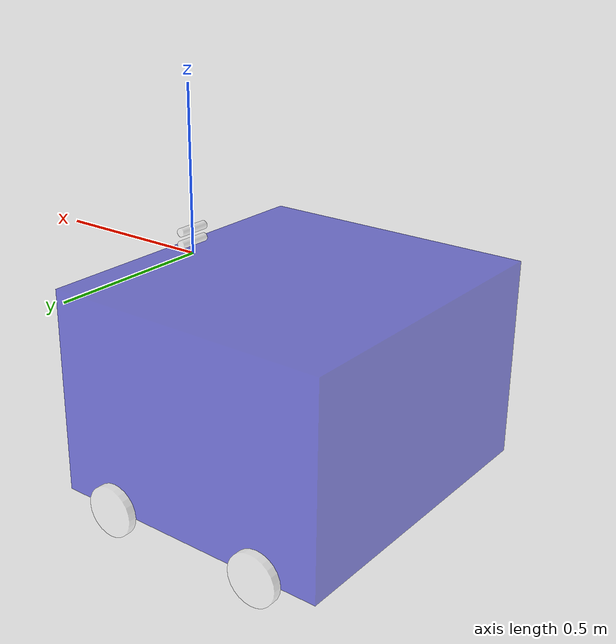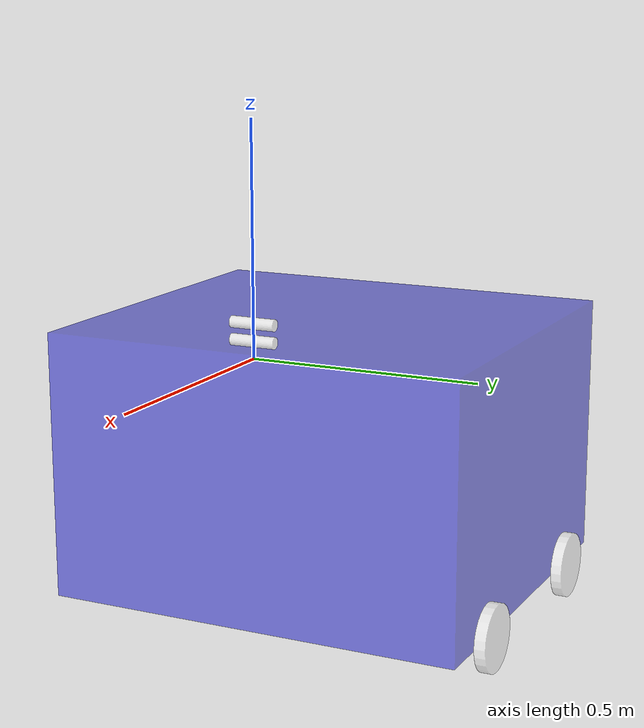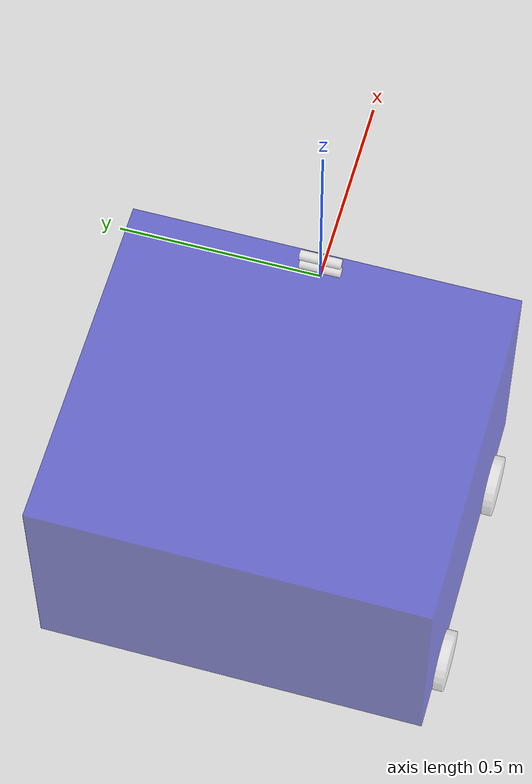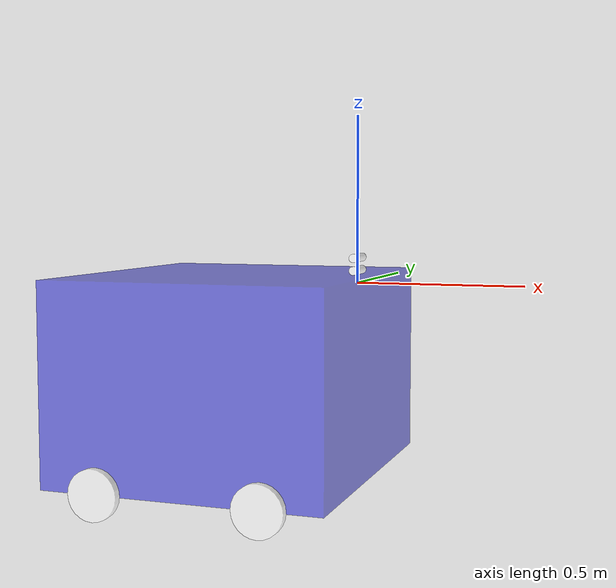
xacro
<?xml version="1.0"?>
<robot xmlns:xacro="http://www.ros.org/wiki/xacro" name="robot">

  <material name="blue">
    <color rgba="0 0 0.8 .5"/>
  </material>
  <material name="black">
    <color rgba="0 0 0 0.5"/>
  </material>
  <material name="white">
    <color rgba="1 1 1 .5"/>
  </material>
  <material name="green">
    <color rgba="0 1 0 0.5"/>
  </material>

  <xacro:property name="baseLength" value="0.8636" />
  <xacro:property name="baseWidth" value="0.9652" />
  <xacro:property name="baseHeight" value="0.6096" />

  <xacro:property name="baseMass" value="27" />
  <xacro:property name="wheelMass" value="0.453592" />

  <xacro:property name="wheelWidth" value="0.0254" />
  <xacro:property name="wheelRadius" value="0.0762" />

  <xacro:property name="wheelOffset" value="0.25" />

  <xacro:property name="camMass" value="0.05" />
  <xacro:property name="camWidth" value="0.1016" />
  <xacro:property name="camRadius" value="0.0127" />

  <link name="base_link">
    <visual>
      <geometry>
        <box size="${baseLength} ${baseWidth} ${baseHeight}"/>
      </geometry>
      <material name="blue"/>
      <origin rpy="0 0 0" xyz="0 0 0.3"/>
    </visual>
    <collision>
      <geometry>
        <box size="${baseLength} ${baseWidth} ${baseHeight}"/>
      </geometry>
      <origin rpy="0 0 0" xyz="0 0 0.3"/>
    </collision>
    <inertial>
      <mass value="${baseMass}"/>
      <inertia ixx="${(1/12) * baseMass * ((baseHeight * baseHeight) + (baseLength * baseLength))}" ixy="0.0" ixz="0.0" iyy="${(1/12) * baseMass * ((baseWidth * baseWidth) + (baseLength * baseLength))}" iyz="0.0" izz="${(1/12) * baseMass * ((baseWidth * baseWidth) + (baseHeight * baseHeight))}"/>
    </inertial>
  </link>

  <link name="front_right_wheel">
    <visual>
      <geometry>
        <cylinder length="${wheelWidth}" radius="${wheelRadius}"/>
      </geometry>
      <origin rpy="0 1.57075 1.57075" xyz="0 ${-wheelWidth/2} 0"/>
      <material name="white"/>
    </visual>
    <collision>
      <geometry>
        <cylinder length="${wheelWidth}" radius="${wheelRadius}"/>
      </geometry>
      <origin rpy="0 1.57075 1.57075" xyz="0 ${-wheelWidth/2} 0"/>
    </collision>
    <inertial>
      <mass value="${wheelMass}"/>
      <inertia ixx="0.4" ixy="0.0" ixz="0.0" iyy="0.4" iyz="0.0" izz="0.2"/>
    </inertial>
  </link>

  <joint name="base_to_front_right_wheel" type="continuous">
    <parent link="base_link"/>
    <child link="front_right_wheel"/>
    <axis xyz="0 1 0"/>
    <origin xyz="${wheelOffset} ${-baseWidth /2} 0"/>
  </joint>

  <link name="back_right_wheel">
    <visual>
      <geometry>
        <cylinder length="${wheelWidth}" radius="${wheelRadius}"/>
      </geometry>
      <origin rpy="0 1.57075 1.57075" xyz="0 ${-wheelWidth/2} 0"/>
      <material name="white"/>
    </visual>
    <collision>
      <geometry>
        <cylinder length="${wheelWidth}" radius="${wheelRadius}"/>
      </geometry>
      <origin rpy="0 1.57075 1.57075" xyz="0 ${-wheelWidth/2} 0"/>
    </collision>
    <inertial>
      <mass value="${wheelMass}"/>
      <inertia ixx="0.4" ixy="0.0" ixz="0.0" iyy="0.4" iyz="0.0" izz="0.2"/>
    </inertial>
  </link>

  <joint name="base_to_back_right_wheel" type="continuous">
    <parent link="base_link"/>
    <child link="back_right_wheel"/>
    <axis xyz="0 1 0"/>
    <origin xyz="${-wheelOffset} ${-baseWidth /2} 0"/>
  </joint>

  <link name="front_left_wheel">
    <visual>
      <geometry>
        <cylinder length="${wheelWidth}" radius="${wheelRadius}"/>
      </geometry>
      <origin rpy="0 1.57075 1.57075" xyz="0 ${wheelWidth/2} 0"/>
      <material name="white"/>
    </visual>
    <collision>
      <geometry>
        <cylinder length="${wheelWidth}" radius="${wheelRadius}"/>
      </geometry>
      <origin rpy="0 1.57075 1.57075" xyz="0 ${wheelWidth/2} 0"/>
    </collision>
    <inertial>
      <mass value="${wheelMass}"/>
      <inertia ixx="0.4" ixy="0.0" ixz="0.0" iyy="0.4" iyz="0.0" izz="0.2"/>
    </inertial>
  </link>

  <joint name="base_to_front_left_wheel" type="continuous">
    <parent link="base_link"/>
    <child link="front_left_wheel"/>
    <axis xyz="0 1 0"/>
    <origin xyz="${wheelOffset} ${baseWidth /2} 0"/>
  </joint>

  <link name="back_left_wheel">
    <visual>
      <geometry>
        <cylinder length="${wheelWidth}" radius="${wheelRadius}"/>
      </geometry>
      <origin rpy="0 1.57075 1.57075" xyz="0 ${wheelWidth/2} 0"/>
      <material name="white"/>
    </visual>
    <collision>
      <geometry>
        <cylinder length="${wheelWidth}" radius="${wheelRadius}"/>
      </geometry>
      <origin rpy="0 1.57075 1.57075" xyz="0 ${-wheelWidth/2} 0"/>
    </collision>
    <inertial>
      <mass value="${wheelMass}"/>
      <inertia ixx="0.4" ixy="0.0" ixz="0.0" iyy="0.4" iyz="0.0" izz="0.2"/>
    </inertial>
  </link>

  <joint name="base_to_back_left_wheel" type="continuous">
    <parent link="base_link"/>
    <child link="back_left_wheel"/>
    <axis xyz="0 1 0"/>
    <origin xyz="${-wheelOffset} ${baseWidth /2} 0"/>
  </joint>

  <!-- Sensors -->

  <link name="t265_pose_frame">
    <visual>
      <geometry>
        <cylinder length="${camWidth}" radius="${camRadius}"/>
      </geometry>
      <origin rpy="0 1.57075 1.57075" xyz="0 0 0"/>
      <material name="white"/>
    </visual>
    <collision>
      <geometry>
        <cylinder length="${camWidth}" radius="${camRadius}"/>
      </geometry>
      <origin rpy="0 1.57075 1.57075" xyz="0 0 0"/>
    </collision>
    <inertial>
      <mass value="${camMass}"/>
      <inertia ixx="0.4" ixy="0.0" ixz="0.0" iyy="0.4" iyz="0.0" izz="0.2"/>
    </inertial>
  </link>

  <joint name="base_to_t265_pose_frame" type="fixed">
    <parent link="t265_pose_frame"/>
    <child link="base_link"/>
    <axis xyz="0 1 0"/>
    <origin xyz="-0.381 0 -0.5842"/>
  </joint>

  <link name="d435_link">
    <visual>
      <geometry>
        <cylinder length="${camWidth}" radius="${camRadius}"/>
      </geometry>
      <origin rpy="0 1.57075 1.57075" xyz="0 0 0"/>
      <material name="white"/>
    </visual>
    <collision>
      <geometry>
        <cylinder length="${camWidth}" radius="${camRadius}"/>
      </geometry>
      <origin rpy="0 1.57075 1.57075" xyz="0 0 0"/>
    </collision>
    <inertial>
      <mass value="${camMass}"/>
      <inertia ixx="0.4" ixy="0.0" ixz="0.0" iyy="0.4" iyz="0.0" izz="0.2"/>
    </inertial>
  </link>

  <joint name="base_to_d435_link" type="fixed">
    <parent link="base_link"/>
    <child link="d435_link"/>
    <axis xyz="0 1 0"/>
    <origin xyz="0.381 0 0.6223"/>
  </joint>

  <link name="laser">
    <visual>
      <geometry>
        <cylinder length="${camWidth}" radius="${camRadius}"/>
      </geometry>
      <origin rpy="0 1.57075 1.57075" xyz="0 0 0"/>
      <material name="white"/>
    </visual>
    <collision>
      <geometry>
        <cylinder length="${camWidth}" radius="${camRadius}"/>
      </geometry>
      <origin rpy="0 1.57075 1.57075" xyz="0 0 0"/>
    </collision>
    <inertial>
      <mass value="${camMass}"/>
      <inertia ixx="0.4" ixy="0.0" ixz="0.0" iyy="0.4" iyz="0.0" izz="0.2"/>
    </inertial>
  </link>

  <joint name="base_to_laser" type="fixed">
    <parent link="base_link"/>
    <child link="laser"/>
    <axis xyz="0 1 0"/>
    <origin xyz="0.381 0 0.66" rpy="0 0 3.1415"/>
  </joint>

</robot>
